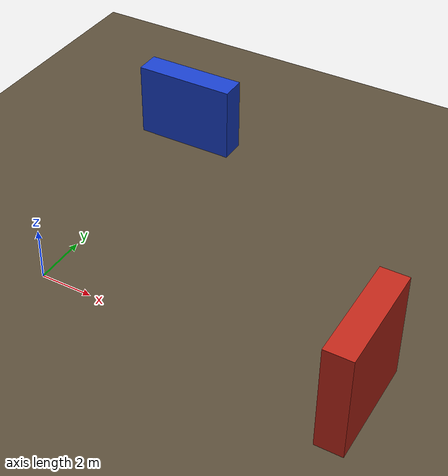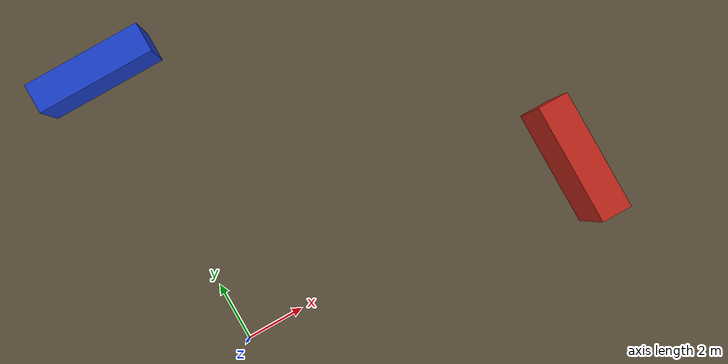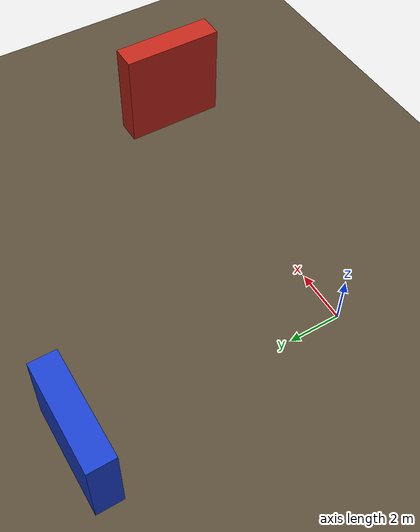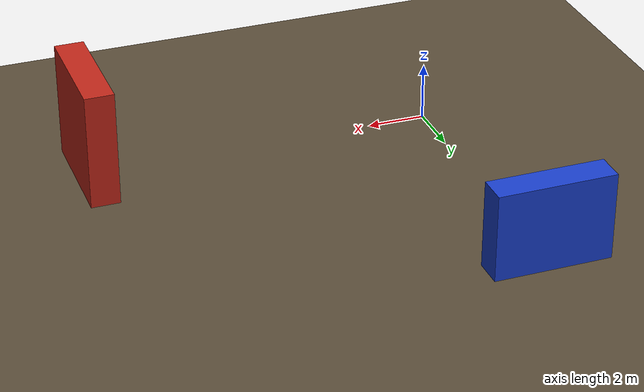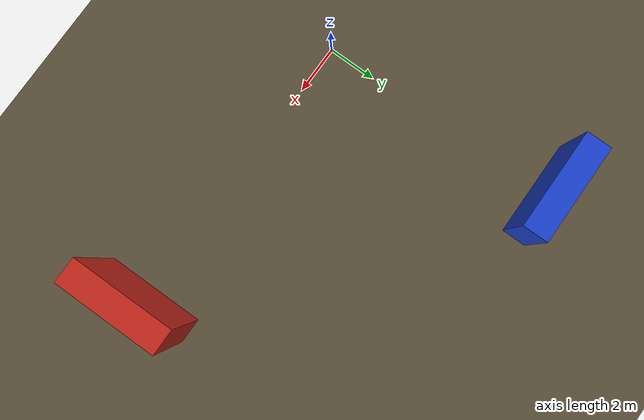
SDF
<?xml version="1.0"?>
<sdf version="1.10">
  <world name="loader_sensors">
    <physics name="loader_500hz" type="dart">
      <max_step_size>0.002</max_step_size>
      <real_time_factor>1.0</real_time_factor>
    </physics>

    <plugin filename="gz-sim-physics-system" name="gz::sim::systems::Physics"/>
    <plugin filename="gz-sim-user-commands-system" name="gz::sim::systems::UserCommands"/>
    <plugin filename="gz-sim-scene-broadcaster-system" name="gz::sim::systems::SceneBroadcaster"/>
    <plugin filename="gz-sim-sensors-system" name="gz::sim::systems::Sensors">
      <render_engine>ogre2</render_engine>
    </plugin>
    <plugin filename="gz-sim-imu-system" name="gz::sim::systems::Imu"/>

    <gravity>0 0 -9.80665</gravity>

    <light name="sun" type="directional">
      <cast_shadows>true</cast_shadows>
      <pose>0 0 10 0 0 0</pose>
      <diffuse>0.8 0.8 0.8 1</diffuse>
      <specular>0.2 0.2 0.2 1</specular>
      <direction>-0.5 0.2 -1</direction>
    </light>

    <model name="ground">
      <static>true</static>
      <link name="link">
        <collision name="collision">
          <geometry><plane><normal>0 0 1</normal><size>120 120</size></plane></geometry>
        </collision>
        <visual name="visual">
          <geometry><plane><normal>0 0 1</normal><size>120 120</size></plane></geometry>
          <material><diffuse>0.35 0.30 0.22 1</diffuse></material>
        </visual>
      </link>
    </model>

    <model name="lidar_target_front">
      <static>true</static>
      <pose>12 0 2 0 0 0</pose>
      <link name="link">
        <collision name="collision"><geometry><box><size>1 4 4</size></box></geometry></collision>
        <visual name="visual">
          <geometry><box><size>1 4 4</size></box></geometry>
          <material><diffuse>0.75 0.15 0.10 1</diffuse></material>
        </visual>
      </link>
    </model>

    <model name="lidar_target_left">
      <static>true</static>
      <pose>0 10 1.5 0 0 0</pose>
      <link name="link">
        <collision name="collision"><geometry><box><size>4 1 3</size></box></geometry></collision>
        <visual name="visual">
          <geometry><box><size>4 1 3</size></box></geometry>
          <material><diffuse>0.10 0.25 0.80 1</diffuse></material>
        </visual>
      </link>
    </model>
  </world>
</sdf>
